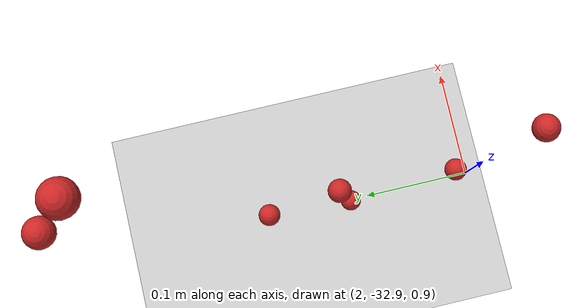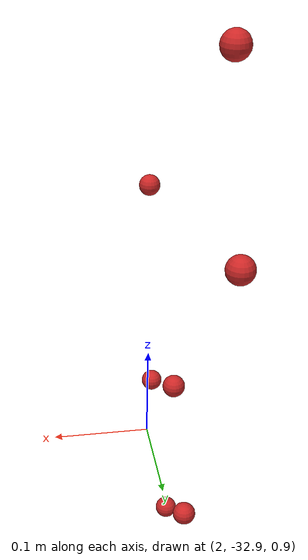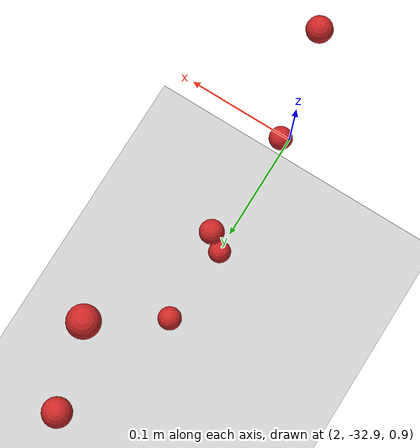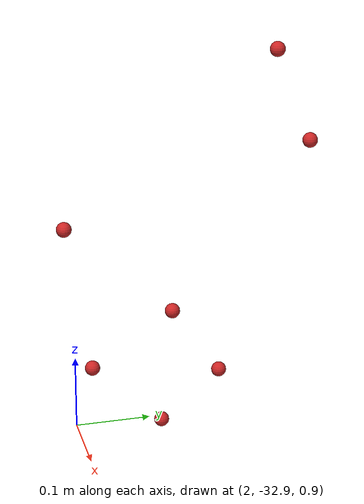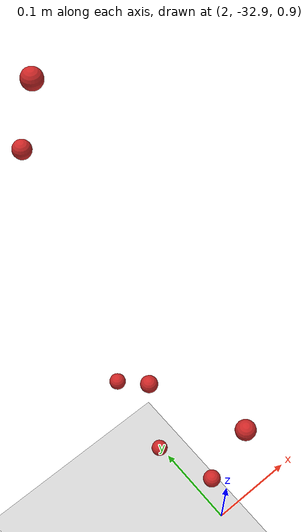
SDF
<sdf version="1.4">
 <world name="default">
  <model name="ground_plane">
   <static>1</static>
   <link name="link">
    <collision name="collision">
     <geometry><plane><normal>0 0 1</normal><size>100 100</size></plane></geometry>
     <surface><friction><ode><mu>100</mu><mu2>50</mu2></ode></friction></surface>
    </collision>
    <visual name="visual">
     <cast_shadows>0</cast_shadows>
     <geometry><plane><normal>0 0 1</normal><size>100 100</size></plane></geometry>
     <material>
      <script><uri>file://media/materials/scripts/gazebo.material</uri><name>Gazebo/Grey</name></script>
     </material>
    </visual>
    <velocity_decay><linear>0</linear><angular>0</angular></velocity_decay>
   </link>
  </model>
  <model name="apple362">
   <link name="my_apple">
    <inertial>
     <pose>2 0 0 0 -0 0</pose>
     <mass>1</mass>
     <inertia><ixx>1</ixx><ixy>0</ixy><ixz>0</ixz><iyy>1</iyy><iyz>0</iyz><izz>1</izz></inertia>
    </inertial>
    <collision name="my_apple_collision">
     <pose>2 0 1 0 -0 0</pose>
     <geometry><sphere><radius>0.01</radius></sphere></geometry>
    </collision>
    <visual name="my_apple_visual">
     <pose>2 0 1 0 -0 0</pose>
     <geometry><sphere><radius>0.01</radius></sphere></geometry>
     <material><script><name>Gazebo/Red</name><uri>__default__</uri></script></material>
    </visual>
    <gravity>0</gravity>
    <velocity_decay><linear>0</linear><angular>0</angular></velocity_decay>
   </link>
   <pose>0 -32.9102 0.185764 0 -0 0</pose>
   <static>0</static>
  </model>
  <model name="apple363">
   <link name="my_apple">
    <inertial>
     <pose>2 0 0 0 -0 0</pose>
     <mass>1</mass>
     <inertia><ixx>1</ixx><ixy>0</ixy><ixz>0</ixz><iyy>1</iyy><iyz>0</iyz><izz>1</izz></inertia>
    </inertial>
    <collision name="my_apple_collision">
     <pose>2 0 1 0 -0 0</pose>
     <geometry><sphere><radius>0.01</radius></sphere></geometry>
    </collision>
    <visual name="my_apple_visual">
     <pose>2 0 1 0 -0 0</pose>
     <geometry><sphere><radius>0.01</radius></sphere></geometry>
     <material><script><name>Gazebo/Red</name><uri>__default__</uri></script></material>
    </visual>
    <gravity>0</gravity>
    <velocity_decay><linear>0</linear><angular>0</angular></velocity_decay>
   </link>
   <pose>0 -32.877 -0.016743 0 -0 0</pose>
   <static>0</static>
  </model>
  <model name="apple365">
   <link name="my_apple">
    <inertial>
     <pose>2 0 0 0 -0 0</pose>
     <mass>1</mass>
     <inertia><ixx>1</ixx><ixy>0</ixy><ixz>0</ixz><iyy>1</iyy><iyz>0</iyz><izz>1</izz></inertia>
    </inertial>
    <collision name="my_apple_collision">
     <pose>2 0 1 0 -0 0</pose>
     <geometry><sphere><radius>0.01</radius></sphere></geometry>
    </collision>
    <visual name="my_apple_visual">
     <pose>2 0 1 0 -0 0</pose>
     <geometry><sphere><radius>0.01</radius></sphere></geometry>
     <material><script><name>Gazebo/Red</name><uri>__default__</uri></script></material>
    </visual>
    <gravity>0</gravity>
    <velocity_decay><linear>0</linear><angular>0</angular></velocity_decay>
   </link>
   <pose>0 -32.7676 0.055105 0 -0 0</pose>
   <static>0</static>
  </model>
  <model name="apple368">
   <link name="my_apple">
    <inertial>
     <pose>2 0 0 0 -0 0</pose>
     <mass>1</mass>
     <inertia><ixx>1</ixx><ixy>0</ixy><ixz>0</ixz><iyy>1</iyy><iyz>0</iyz><izz>1</izz></inertia>
    </inertial>
    <collision name="my_apple_collision">
     <pose>2 0 1 0 -0 0</pose>
     <geometry><sphere><radius>0.01</radius></sphere></geometry>
    </collision>
    <visual name="my_apple_visual">
     <pose>2 0 1 0 -0 0</pose>
     <geometry><sphere><radius>0.01</radius></sphere></geometry>
     <material><script><name>Gazebo/Red</name><uri>__default__</uri></script></material>
    </visual>
    <gravity>0</gravity>
    <velocity_decay><linear>0</linear><angular>0</angular></velocity_decay>
   </link>
   <pose>0 -32.5828 0.279333 0 -0 0</pose>
   <static>0</static>
  </model>
  <model name="apple382">
   <link name="my_apple">
    <inertial>
     <pose>2 0 0 0 -0 0</pose>
     <mass>1</mass>
     <inertia><ixx>1</ixx><ixy>0</ixy><ixz>0</ixz><iyy>1</iyy><iyz>0</iyz><izz>1</izz></inertia>
    </inertial>
    <collision name="my_apple_collision">
     <pose>2 0 1 0 -0 0</pose>
     <geometry><sphere><radius>0.01</radius></sphere></geometry>
    </collision>
    <visual name="my_apple_visual">
     <pose>2 0 1 0 -0 0</pose>
     <geometry><sphere><radius>0.01</radius></sphere></geometry>
     <material><script><name>Gazebo/Red</name><uri>__default__</uri></script></material>
    </visual>
    <gravity>0</gravity>
    <velocity_decay><linear>0</linear><angular>0</angular></velocity_decay>
   </link>
   <pose>0 -32.6292 0.405716 0 -0 0</pose>
   <static>0</static>
  </model>
  <model name="apple384">
   <link name="my_apple">
    <inertial>
     <pose>2 0 0 0 -0 0</pose>
     <mass>1</mass>
     <inertia><ixx>1</ixx><ixy>0</ixy><ixz>0</ixz><iyy>1</iyy><iyz>0</iyz><izz>1</izz></inertia>
    </inertial>
    <collision name="my_apple_collision">
     <pose>2 0 1 0 -0 0</pose>
     <geometry><sphere><radius>0.01</radius></sphere></geometry>
    </collision>
    <visual name="my_apple_visual">
     <pose>2 0 1 0 -0 0</pose>
     <geometry><sphere><radius>0.01</radius></sphere></geometry>
     <material><script><name>Gazebo/Red</name><uri>__default__</uri></script></material>
    </visual>
    <gravity>0</gravity>
    <velocity_decay><linear>0</linear><angular>0</angular></velocity_decay>
   </link>
   <pose>0 -32.7036 -0.03936 0 -0 0</pose>
   <static>0</static>
  </model>
  <model name="apple385">
   <link name="my_apple">
    <inertial>
     <pose>2 0 0 0 -0 0</pose>
     <mass>1</mass>
     <inertia><ixx>1</ixx><ixy>0</ixy><ixz>0</ixz><iyy>1</iyy><iyz>0</iyz><izz>1</izz></inertia>
    </inertial>
    <collision name="my_apple_collision">
     <pose>2 0 1 0 -0 0</pose>
     <geometry><sphere><radius>0.01</radius></sphere></geometry>
    </collision>
    <visual name="my_apple_visual">
     <pose>2 0 1 0 -0 0</pose>
     <geometry><sphere><radius>0.01</radius></sphere></geometry>
     <material><script><name>Gazebo/Red</name><uri>__default__</uri></script></material>
    </visual>
    <gravity>0</gravity>
    <velocity_decay><linear>0</linear><angular>0</angular></velocity_decay>
   </link>
   <pose>0 -32.7832 -0.105572 0 -0 0</pose>
   <static>0</static>
  </model>
 </world>
</sdf>
